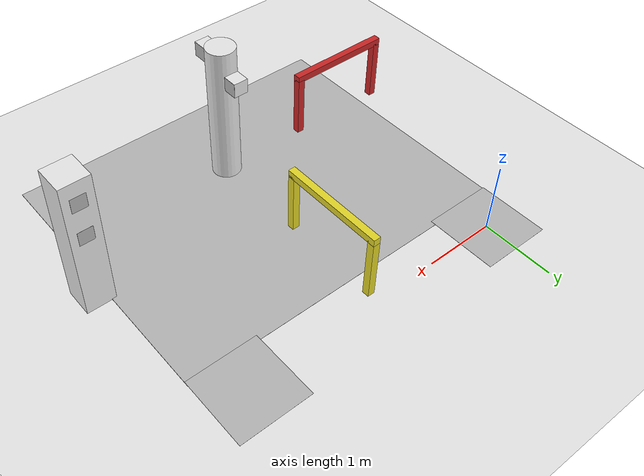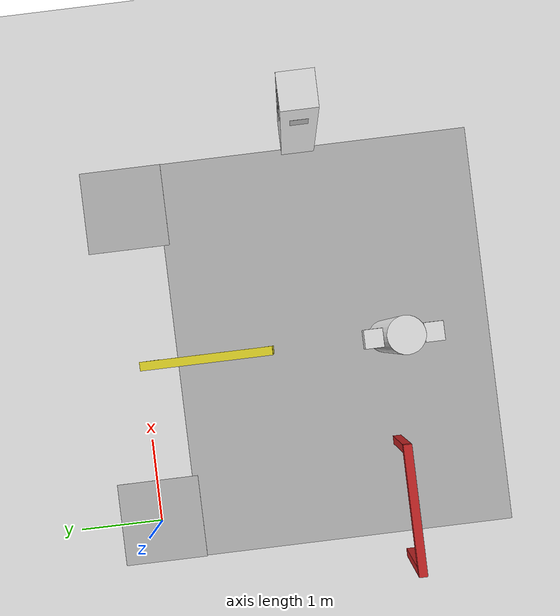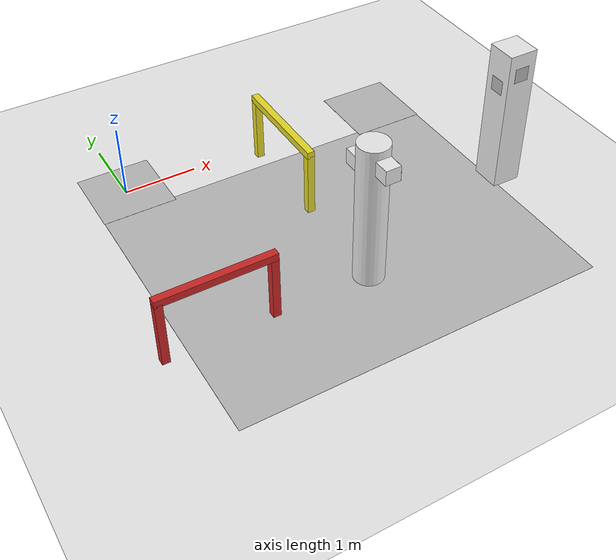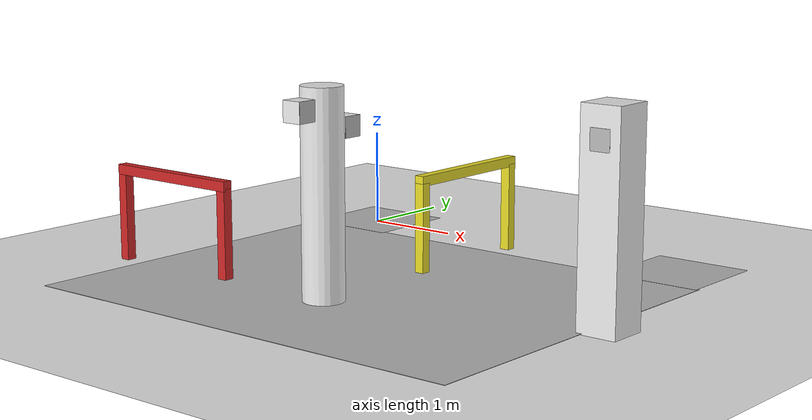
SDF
<sdf version="1.7">
 <world name="default">
  <model name="ground_plane">
   <static>1</static>
   <link name="link">
    <collision name="collision">
     <geometry><plane><normal>0 0 1</normal><size>100 100</size></plane></geometry>
     <surface>
      <contact><collide_bitmask>65535</collide_bitmask></contact>
      <friction><ode><mu>100</mu><mu2>50</mu2></ode></friction>
     </surface>
    </collision>
    <visual name="visual">
     <cast_shadows>0</cast_shadows>
     <geometry><plane><normal>0 0 1</normal><size>100 100</size></plane></geometry>
     <material>
      <script><uri>file://media/materials/scripts/gazebo.material</uri><name>Gazebo/White</name></script>
     </material>
    </visual>
   </link>
  </model>
  <light name="sun" type="directional">
   <pose>0 0 10 0 -0 0</pose>
   <diffuse>0.8 0.8 0.8 1</diffuse>
   <specular>0.2 0.2 0.2 1</specular>
   <attenuation>
    <range>1000</range>
    <constant>0.9</constant>
    <linear>0.01</linear>
    <quadratic>0.001</quadratic>
   </attenuation>
   <direction>-0.5 0.1 -0.9</direction>
   <spot><inner_angle>0</inner_angle><outer_angle>0</outer_angle><falloff>0</falloff></spot>
  </light>
  <gravity>0 0 -9.8</gravity>
  <magnetic_field>6e-06 2.3e-05 -4.2e-05</magnetic_field>
  <atmosphere type="adiabatic"/>
  <physics type="ode">
   <max_step_size>0.001</max_step_size>
   <real_time_factor>1</real_time_factor>
   <real_time_update_rate>1000</real_time_update_rate>
  </physics>
  <scene><ambient>0.4 0.4 0.4 1</ambient><background>0.7 0.7 0.7 1</background><shadows>1</shadows></scene>
  <spherical_coordinates>
   <surface_model>EARTH_WGS84</surface_model>
   <latitude_deg>0</latitude_deg>
   <longitude_deg>0</longitude_deg>
   <elevation>0</elevation>
   <heading_deg>0</heading_deg>
  </spherical_coordinates>
  <model name="qt">
   <static>1</static>
   <link name="qrt">
    <collision name="collision"><geometry><box><size>0.2 0.2 0.001</size></box></geometry></collision>
    <visual name="visual">
     <geometry><box><size>0.2 0.2 0.001</size></box></geometry>
     <material>
      <script>
       <uri>model://qr_torre/materials/scripts/</uri>
       <uri>model://qr_torre/materials/textures/</uri>
       <name>DroneSim/QRt</name>
      </script>
     </material>
    </visual>
   </link>
   <pose>2.56728 -2.99473 0.01 0 -0 0</pose>
  </model>
  <model name="qr5">
   <static>1</static>
   <link name="qr5">
    <collision name="collision"><geometry><box><size>0.2 0.2 0.001</size></box></geometry></collision>
    <visual name="visual">
     <geometry><box><size>0.2 0.2 0.001</size></box></geometry>
     <material>
      <script>
       <uri>model://qr5/materials/scripts/</uri>
       <uri>model://qr5/materials/textures/</uri>
       <name>DroneSim/QR5</name>
      </script>
     </material>
    </visual>
   </link>
   <pose>0.01 -2.20266 0.01 0 -0 0</pose>
  </model>
  <model name="qr7">
   <static>1</static>
   <link name="qr7">
    <collision name="collision"><geometry><box><size>0.2 0.2 0.001</size></box></geometry></collision>
    <visual name="visual">
     <geometry><box><size>0.2 0.2 0.001</size></box></geometry>
     <material>
      <script>
       <uri>model://qr7/materials/scripts/</uri>
       <uri>model://qr7/materials/textures/</uri>
       <name>DroneSim/QR7</name>
      </script>
     </material>
    </visual>
   </link>
   <pose>2.56728 -2.20266 0.01 0 -0 0</pose>
  </model>
  <model name="qr12">
   <static>1</static>
   <link name="qr12">
    <collision name="collision"><geometry><box><size>0.2 0.2 0.001</size></box></geometry></collision>
    <visual name="visual">
     <geometry><box><size>0.2 0.2 0.001</size></box></geometry>
     <material>
      <script>
       <uri>model://qr12/materials/scripts/</uri>
       <uri>model://qr12/materials/textures/</uri>
       <name>DroneSim/QR12</name>
      </script>
     </material>
    </visual>
   </link>
   <pose>3.84964 -3.77813 0.01 0 -0 0</pose>
  </model>
  <model name="qr11">
   <static>1</static>
   <link name="qr11">
    <collision name="collision"><geometry><box><size>0.2 0.2 0.001</size></box></geometry></collision>
    <visual name="visual">
     <geometry><box><size>0.2 0.2 0.001</size></box></geometry>
     <material>
      <script>
       <uri>model://qr11/materials/scripts/</uri>
       <uri>model://qr11/materials/textures/</uri>
       <name>DroneSim/QR11</name>
      </script>
     </material>
    </visual>
   </link>
   <pose>2.56728 -3.77813 0.01 0 -0 0</pose>
  </model>
  <model name="heliponto">
   <static>1</static>
   <link name="field">
    <pose>0 0 0.02 0 -0 0</pose>
    <collision name="collision">
     <geometry><plane><normal>0 0 1</normal><size>1 1</size></plane></geometry>
    </collision>
    <visual name="road">
     <geometry><plane><normal>0 0 1</normal><size>1 1</size></plane></geometry>
     <material>
      <script>
       <uri>model://heliponto/materials/scripts/</uri>
       <uri>model://heliponto/materials/textures/</uri>
       <name>DroneSim/Heliponto</name>
      </script>
     </material>
    </visual>
   </link>
   <pose>0 0 0.001 0 -0 0</pose>
  </model>
  <model name="conect4">
   <static>1</static>
   <link name="field">
    <pose>0 0 0.01 0 -0 0</pose>
    <collision name="collision">
     <geometry><plane><normal>0 0 1</normal><size>4.85 3.85</size></plane></geometry>
    </collision>
    <visual name="visual">
     <geometry><plane><normal>0 0 1</normal><size>0.2 0.33</size></plane></geometry>
     <material>
      <script>
       <uri>model://rua_conect/materials/scripts/</uri>
       <uri>model://rua_conect/materials/textures/</uri>
       <name>DroneSim/conect</name>
      </script>
     </material>
    </visual>
   </link>
   <pose>4.115 -2.20266 0.001 0 -0 1.5708</pose>
  </model>
  <model name="conect2">
   <static>1</static>
   <link name="field">
    <pose>0 0 0.01 0 -0 0</pose>
    <collision name="collision">
     <geometry><plane><normal>0 0 1</normal><size>4.85 3.85</size></plane></geometry>
    </collision>
    <visual name="visual">
     <geometry><plane><normal>0 0 1</normal><size>0.2 0.33</size></plane></geometry>
     <material>
      <script>
       <uri>model://rua_conect/materials/scripts/</uri>
       <uri>model://rua_conect/materials/textures/</uri>
       <name>DroneSim/conect</name>
      </script>
     </material>
    </visual>
   </link>
   <pose>3.84964 -0.665993 0.001 0 -0 0</pose>
  </model>
  <model name="qr10">
   <static>1</static>
   <link name="qr10">
    <collision name="collision"><geometry><box><size>0.2 0.2 0.001</size></box></geometry></collision>
    <visual name="visual">
     <geometry><box><size>0.2 0.2 0.001</size></box></geometry>
     <material>
      <script>
       <uri>model://qr10/materials/scripts/</uri>
       <uri>model://qr10/materials/textures/</uri>
       <name>DroneSim/QR10</name>
      </script>
     </material>
    </visual>
   </link>
   <pose>1.29007 -3.77813 0.01 0 -0 0</pose>
  </model>
  <model name="conect1">
   <static>1</static>
   <link name="field">
    <pose>0 0 0.01 0 -0 0</pose>
    <collision name="collision">
     <geometry><plane><normal>0 0 1</normal><size>4.85 3.85</size></plane></geometry>
    </collision>
    <visual name="visual">
     <geometry><plane><normal>0 0 1</normal><size>0.2 0.33</size></plane></geometry>
     <material>
      <script>
       <uri>model://rua_conect/materials/scripts/</uri>
       <uri>model://rua_conect/materials/textures/</uri>
       <name>DroneSim/conect</name>
      </script>
     </material>
    </visual>
   </link>
   <pose>0.01 -0.665993 0.001 0 -0 0</pose>
  </model>
  <model name="qr9">
   <static>1</static>
   <link name="qr9">
    <collision name="collision"><geometry><box><size>0.2 0.2 0.001</size></box></geometry></collision>
    <visual name="visual">
     <geometry><box><size>0.2 0.2 0.001</size></box></geometry>
     <material>
      <script>
       <uri>model://qr9/materials/scripts/</uri>
       <uri>model://qr9/materials/textures/</uri>
       <name>DroneSim/QR9</name>
      </script>
     </material>
    </visual>
   </link>
   <pose>0.01 -3.77813 0.01 0 -0 0</pose>
  </model>
  <model name="cruz_vermelha">
   <static>1</static>
   <link name="field">
    <pose>0 0 0.02 0 -0 0</pose>
    <collision name="collision">
     <geometry><plane><normal>0 0 1</normal><size>1 1</size></plane></geometry>
    </collision>
    <visual name="road">
     <geometry><plane><normal>0 0 1</normal><size>1 1</size></plane></geometry>
     <material>
      <script>
       <uri>model://cruz_vermelha/materials/scripts/</uri>
       <uri>model://cruz_vermelha/materials/textures/</uri>
       <name>DroneSim/Cruz</name>
      </script>
     </material>
    </visual>
   </link>
   <pose>3.85964 0 0.001 0 -0 0</pose>
  </model>
  <model name="torre">
   <static>1</static>
   <link name="Tower">
    <pose>0 0 1 0 -0 0</pose>
    <collision name="collision">
     <geometry><cylinder><radius>0.2</radius><length>2</length></cylinder></geometry>
    </collision>
    <visual name="visual">
     <geometry><cylinder><radius>0.2</radius><length>2</length></cylinder></geometry>
     <material>
      <script><uri>file://media/materials/scripts/gazebo.material</uri><name>Gazebo/White</name></script>
     </material>
    </visual>
   </link>
   <link name="box_left">
    <pose>0 -0.3 1.8 0 -0 0</pose>
    <collision name="collision"><geometry><box><size>0.2 0.2 0.2</size></box></geometry></collision>
    <visual name="visual">
     <geometry><box><size>0.2 0.2 0.2</size></box></geometry>
     <material>
      <script><uri>file://media/materials/scripts/gazebo.material</uri><name>Gazebo/White</name></script>
     </material>
    </visual>
   </link>
   <link name="box_right">
    <pose>0 0.3 1.6 0 -0 0</pose>
    <collision name="collision"><geometry><box><size>0.2 0.2 0.2</size></box></geometry></collision>
    <visual name="visual">
     <geometry><box><size>0.2 0.2 0.2</size></box></geometry>
     <material>
      <script><uri>file://media/materials/scripts/gazebo.material</uri><name>Gazebo/White</name></script>
     </material>
    </visual>
   </link>
   <link name="qr1t">
    <pose>0.101 -0.3 1.8 3.14159 1.57079 3.14159</pose>
    <collision name="collision"><geometry><box><size>0.2 0.2 0</size></box></geometry></collision>
    <visual name="visual">
     <geometry><box><size>0.2 0.2 0.001</size></box></geometry>
     <material>
      <script>
       <uri>model://torre_eletrica/materials/scripts/</uri>
       <uri>model://torre_eletrica/materials/textures/</uri>
       <name>DroneSim/qr1t</name>
      </script>
     </material>
    </visual>
   </link>
   <link name="qr2t">
    <pose>0.101 0.3 1.6 3.14159 1.57079 3.14159</pose>
    <collision name="collision"><geometry><box><size>0.2 0.2 0</size></box></geometry></collision>
    <visual name="visual">
     <geometry><box><size>0.2 0.2 0.001</size></box></geometry>
     <material>
      <script>
       <uri>model://torre_eletrica/materials/scripts/</uri>
       <uri>model://torre_eletrica/materials/textures/</uri>
       <name>DroneSim/qr2t</name>
      </script>
     </material>
    </visual>
   </link>
   <pose>1.921 -2.99473 0 0 -0 0</pose>
  </model>
  <model name="obstaculo_vermelho">
   <static>1</static>
   <link name="obstacle_left">
    <pose>0 0 0.45 0 -0 0</pose>
    <collision name="collision"><geometry><box><size>0.1 0.1 0.9</size></box></geometry></collision>
    <visual name="visual">
     <geometry><box><size>0.1 0.1 0.9</size></box></geometry>
     <material>
      <script><uri>file://media/materials/scripts/gazebo.material</uri><name>Gazebo/Red</name></script>
     </material>
    </visual>
   </link>
   <link name="obstacle_right">
    <pose>1.4 0 0.45 0 -0 0</pose>
    <collision name="collision"><geometry><box><size>0.1 0.1 0.9</size></box></geometry></collision>
    <visual name="visual">
     <geometry><box><size>0.1 0.1 0.9</size></box></geometry>
     <material>
      <script><uri>file://media/materials/scripts/gazebo.material</uri><name>Gazebo/Red</name></script>
     </material>
    </visual>
   </link>
   <link name="obstacle_center">
    <pose>0.7 0 0.925 0 -0 0</pose>
    <collision name="collision"><geometry><box><size>1.4 0.1 0.1</size></box></geometry></collision>
    <visual name="visual">
     <geometry><box><size>1.5 0.1 0.1</size></box></geometry>
     <material>
      <script><uri>file://media/materials/scripts/gazebo.material</uri><name>Gazebo/Red</name></script>
     </material>
    </visual>
   </link>
   <joint name="left_center" type="revolute">
    <child>obstacle_left</child>
    <parent>obstacle_center</parent>
    <axis>
     <xyz expressed_in="__model__">0 0 -2</xyz>
     <limit><upper>0</upper><lower>0</lower></limit>
     <dynamics><spring_reference>0</spring_reference><spring_stiffness>0</spring_stiffness></dynamics>
    </axis>
   </joint>
   <joint name="right_center" type="revolute">
    <child>obstacle_right</child>
    <parent>obstacle_center</parent>
    <axis>
     <xyz expressed_in="__model__">0 0 -2</xyz>
     <limit><upper>0</upper><lower>0</lower></limit>
     <dynamics><spring_reference>0</spring_reference><spring_stiffness>0</spring_stiffness></dynamics>
    </axis>
   </joint>
   <pose>-0.759984 -2.99473 0 0 -0 0</pose>
  </model>
  <model name="predio">
   <static>1</static>
   <link name="house">
    <pose>0 0 1 0 -0 0</pose>
    <collision name="collision"><geometry><box><size>0.4 0.4 2</size></box></geometry></collision>
    <visual name="visual">
     <geometry><box><size>0.4 0.4 2</size></box></geometry>
     <material>
      <script><uri>file://media/materials/scripts/gazebo.material</uri><name>Gazebo/White</name></script>
     </material>
    </visual>
   </link>
   <link name="qr1p">
    <pose>-0.201 0 1.5 3.14159 1.57079 3.14159</pose>
    <collision name="collision"><geometry><box><size>0.2 0.2 0</size></box></geometry></collision>
    <visual name="visual">
     <geometry><box><size>0.2 0.2 0.001</size></box></geometry>
     <material>
      <script>
       <uri>model://predio/materials/scripts/</uri>
       <uri>model://predio/materials/textures/</uri>
       <name>DroneSim/qr1p</name>
      </script>
     </material>
    </visual>
   </link>
   <link name="qr2p">
    <pose>0 0.201 1.2 1.5708 -0 0</pose>
    <collision name="collision"><geometry><box><size>0.2 0.2 0</size></box></geometry></collision>
    <visual name="visual">
     <geometry><box><size>0.2 0.2 0.001</size></box></geometry>
     <material>
      <script>
       <uri>model://predio/materials/scripts/</uri>
       <uri>model://predio/materials/textures/</uri>
       <name>DroneSim/qr2p</name>
      </script>
     </material>
    </visual>
   </link>
   <link name="qr3p">
    <pose>0 0.201 1.7 1.5708 -0 0</pose>
    <collision name="collision"><geometry><box><size>0.2 0.2 0</size></box></geometry></collision>
    <visual name="visual">
     <geometry><box><size>0.2 0.2 0.001</size></box></geometry>
     <material>
      <script>
       <uri>model://predio/materials/scripts/</uri>
       <uri>model://predio/materials/textures/</uri>
       <name>DroneSim/qr3p</name>
      </script>
     </material>
    </visual>
   </link>
   <link name="qr4p">
    <pose>0 -0.201 1.7 1.5708 -0 0</pose>
    <collision name="collision"><geometry><box><size>0.2 0.2 0</size></box></geometry></collision>
    <visual name="visual">
     <geometry><box><size>0.2 0.2 0.001</size></box></geometry>
     <material>
      <script>
       <uri>model://predio/materials/scripts/</uri>
       <uri>model://predio/materials/textures/</uri>
       <name>DroneSim/qr4p</name>
      </script>
     </material>
    </visual>
   </link>
   <pose>4.49562 -2.20266 0 0 -0 0</pose>
  </model>
  <model name="qr2">
   <static>1</static>
   <link name="qr2">
    <collision name="collision"><geometry><box><size>0.2 0.2 0.001</size></box></geometry></collision>
    <visual name="visual">
     <geometry><box><size>0.2 0.2 0.001</size></box></geometry>
     <material>
      <script>
       <uri>model://qr2/materials/scripts/</uri>
       <uri>model://qr2/materials/textures/</uri>
       <name>DroneSim/QR2</name>
      </script>
     </material>
    </visual>
   </link>
   <pose>1.29007 -0.933153 0.01 0 -0 0</pose>
  </model>
  <model name="conect3">
   <static>1</static>
   <link name="field">
    <pose>0 0 0.01 0 -0 0</pose>
    <collision name="collision">
     <geometry><plane><normal>0 0 1</normal><size>4.85 3.85</size></plane></geometry>
    </collision>
    <visual name="visual">
     <geometry><plane><normal>0 0 1</normal><size>0.2 0.33</size></plane></geometry>
     <material>
      <script>
       <uri>model://rua_conect/materials/scripts/</uri>
       <uri>model://rua_conect/materials/textures/</uri>
       <name>DroneSim/conect</name>
      </script>
     </material>
    </visual>
   </link>
   <pose>2.30162 -2.99473 0.001 0 -0 1.5708</pose>
  </model>
  <model name="rua">
   <static>1</static>
   <link name="field">
    <pose>0 0 0.01 0 -0 0</pose>
    <collision name="collision">
     <geometry><plane><normal>0 0 1</normal><size>4.85 3.85</size></plane></geometry>
    </collision>
    <visual name="visual">
     <geometry><plane><normal>0 0 1</normal><size>4.85 3.85</size></plane></geometry>
     <material>
      <script>
       <uri>model://rua/materials/scripts/</uri>
       <uri>model://rua/materials/textures/</uri>
       <name>DroneSim/rua</name>
      </script>
     </material>
    </visual>
   </link>
   <pose>1.93388 -2.35508 0 0 -0 0</pose>
  </model>
  <model name="obstaculo_amarelo">
   <static>1</static>
   <link name="obstacle_left">
    <pose>0 0 0.45 0 -0 0</pose>
    <collision name="collision"><geometry><box><size>0.1 0.1 0.9</size></box></geometry></collision>
    <visual name="visual">
     <geometry><box><size>0.1 0.1 0.9</size></box></geometry>
     <material>
      <script><uri>file://media/materials/scripts/gazebo.material</uri><name>Gazebo/Yellow</name></script>
     </material>
    </visual>
   </link>
   <link name="obstacle_right">
    <pose>1.4 0 0.45 0 -0 0</pose>
    <collision name="collision"><geometry><box><size>0.1 0.1 0.9</size></box></geometry></collision>
    <visual name="visual">
     <geometry><box><size>0.1 0.1 0.9</size></box></geometry>
     <material>
      <script><uri>file://media/materials/scripts/gazebo.material</uri><name>Gazebo/Yellow</name></script>
     </material>
    </visual>
   </link>
   <link name="obstacle_center">
    <pose>0.7 0 0.925 0 -0 0</pose>
    <collision name="collision"><geometry><box><size>1.4 0.1 0.1</size></box></geometry></collision>
    <visual name="visual">
     <geometry><box><size>1.5 0.1 0.1</size></box></geometry>
     <material>
      <script><uri>file://media/materials/scripts/gazebo.material</uri><name>Gazebo/Yellow</name></script>
     </material>
    </visual>
   </link>
   <joint name="left_center" type="revolute">
    <child>obstacle_left</child>
    <parent>obstacle_center</parent>
    <axis>
     <xyz expressed_in="__model__">0 0 -2</xyz>
     <limit><upper>0</upper><lower>0</lower></limit>
     <dynamics><spring_reference>0</spring_reference><spring_stiffness>0</spring_stiffness></dynamics>
    </axis>
   </joint>
   <joint name="right_center" type="revolute">
    <child>obstacle_right</child>
    <parent>obstacle_center</parent>
    <axis>
     <xyz expressed_in="__model__">0 0 -2</xyz>
     <limit><upper>0</upper><lower>0</lower></limit>
     <dynamics><spring_reference>0</spring_reference><spring_stiffness>0</spring_stiffness></dynamics>
    </axis>
   </joint>
   <pose>1.921 -1.56892 0 0 -0 1.5708</pose>
  </model>
  <model name="qr1">
   <static>1</static>
   <link name="qr1">
    <collision name="collision"><geometry><box><size>0.2 0.2 0.001</size></box></geometry></collision>
    <visual name="visual">
     <geometry><box><size>0.2 0.2 0.001</size></box></geometry>
     <material>
      <script>
       <uri>model://qr1/materials/scripts/</uri>
       <uri>model://qr1/materials/textures/</uri>
       <name>DroneSim/QR1</name>
      </script>
     </material>
    </visual>
   </link>
   <pose>0.01 -0.933153 0.01 0 -0 0</pose>
  </model>
  <model name="qr6">
   <static>1</static>
   <link name="qr6">
    <collision name="collision"><geometry><box><size>0.2 0.2 0.001</size></box></geometry></collision>
    <visual name="visual">
     <geometry><box><size>0.2 0.2 0.001</size></box></geometry>
     <material>
      <script>
       <uri>model://qr6/materials/scripts/</uri>
       <uri>model://qr6/materials/textures/</uri>
       <name>DroneSim/QR6</name>
      </script>
     </material>
    </visual>
   </link>
   <pose>1.29007 -2.20266 0.01 0 -0 0</pose>
  </model>
  <model name="qr3">
   <static>1</static>
   <link name="qr3">
    <collision name="collision"><geometry><box><size>0.2 0.2 0.001</size></box></geometry></collision>
    <visual name="visual">
     <geometry><box><size>0.2 0.2 0.001</size></box></geometry>
     <material>
      <script>
       <uri>model://qr3/materials/scripts/</uri>
       <uri>model://qr3/materials/textures/</uri>
       <name>DroneSim/QR3</name>
      </script>
     </material>
    </visual>
   </link>
   <pose>2.56728 -0.933153 0.01 0 -0 0</pose>
  </model>
  <model name="qr4">
   <static>1</static>
   <link name="qr4">
    <collision name="collision"><geometry><box><size>0.2 0.2 0.001</size></box></geometry></collision>
    <visual name="visual">
     <geometry><box><size>0.2 0.2 0.001</size></box></geometry>
     <material>
      <script>
       <uri>model://qr4/materials/scripts/</uri>
       <uri>model://qr4/materials/textures/</uri>
       <name>DroneSim/QR4</name>
      </script>
     </material>
    </visual>
   </link>
   <pose>3.84964 -0.933153 0.01 0 -0 0</pose>
  </model>
  <model name="qr8">
   <static>1</static>
   <link name="qr8">
    <collision name="collision"><geometry><box><size>0.2 0.2 0.001</size></box></geometry></collision>
    <visual name="visual">
     <geometry><box><size>0.2 0.2 0.001</size></box></geometry>
     <material>
      <script>
       <uri>model://qr8/materials/scripts/</uri>
       <uri>model://qr8/materials/textures/</uri>
       <name>DroneSim/QR8</name>
      </script>
     </material>
    </visual>
   </link>
   <pose>3.84964 -2.20266 0.01 0 -0 0</pose>
  </model>
 </world>
</sdf>
